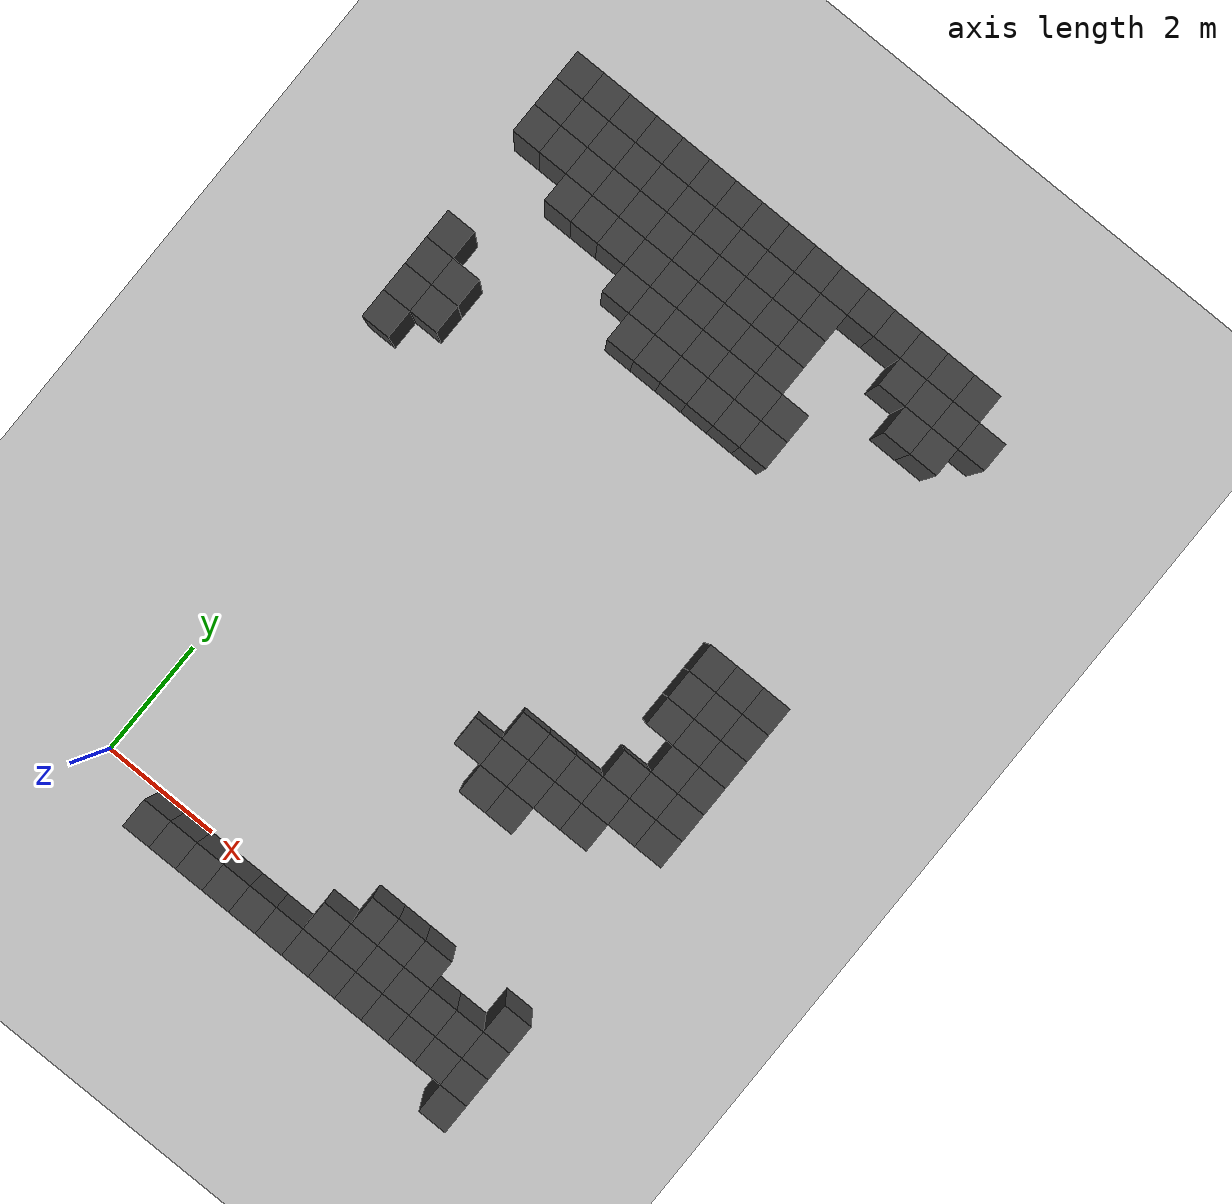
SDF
<sdf version="1.7">
 <world name="map_7972">
  <model name="ground_plane">
   <static>true</static>
   <link name="link">
    <collision name="collision">
     <geometry><plane><normal>0 0 1</normal><size>200 200</size></plane></geometry>
    </collision>
    <visual name="visual">
     <geometry><plane><normal>0 0 1</normal><size>200 200</size></plane></geometry>
     <material><ambient>0.8 0.8 0.8 1</ambient><diffuse>0.8 0.8 0.8 1</diffuse></material>
    </visual>
   </link>
  </model>
  <model name="maze_environment">
   <static>true</static>
   <link name="wall_23">
    <pose>-0.750 12.250 0.500 0 0 0</pose>
    <collision name="col"><geometry><box><size>0.5 0.5 1.0</size></box></geometry></collision>
    <visual name="vis">
     <geometry><box><size>0.5 0.5 1.0</size></box></geometry>
     <material><ambient>0.15 0.15 0.15 1</ambient><diffuse>0.25 0.25 0.25 1</diffuse></material>
    </visual>
   </link>
   <link name="wall_24">
    <pose>-0.250 12.250 0.500 0 0 0</pose>
    <collision name="col"><geometry><box><size>0.5 0.5 1.0</size></box></geometry></collision>
    <visual name="vis">
     <geometry><box><size>0.5 0.5 1.0</size></box></geometry>
     <material><ambient>0.15 0.15 0.15 1</ambient><diffuse>0.25 0.25 0.25 1</diffuse></material>
    </visual>
   </link>
   <link name="wall_25">
    <pose>0.250 12.250 0.500 0 0 0</pose>
    <collision name="col"><geometry><box><size>0.5 0.5 1.0</size></box></geometry></collision>
    <visual name="vis">
     <geometry><box><size>0.5 0.5 1.0</size></box></geometry>
     <material><ambient>0.15 0.15 0.15 1</ambient><diffuse>0.25 0.25 0.25 1</diffuse></material>
    </visual>
   </link>
   <link name="wall_26">
    <pose>0.750 12.250 0.500 0 0 0</pose>
    <collision name="col"><geometry><box><size>0.5 0.5 1.0</size></box></geometry></collision>
    <visual name="vis">
     <geometry><box><size>0.5 0.5 1.0</size></box></geometry>
     <material><ambient>0.15 0.15 0.15 1</ambient><diffuse>0.25 0.25 0.25 1</diffuse></material>
    </visual>
   </link>
   <link name="wall_27">
    <pose>1.250 12.250 0.500 0 0 0</pose>
    <collision name="col"><geometry><box><size>0.5 0.5 1.0</size></box></geometry></collision>
    <visual name="vis">
     <geometry><box><size>0.5 0.5 1.0</size></box></geometry>
     <material><ambient>0.15 0.15 0.15 1</ambient><diffuse>0.25 0.25 0.25 1</diffuse></material>
    </visual>
   </link>
   <link name="wall_28">
    <pose>1.750 12.250 0.500 0 0 0</pose>
    <collision name="col"><geometry><box><size>0.5 0.5 1.0</size></box></geometry></collision>
    <visual name="vis">
     <geometry><box><size>0.5 0.5 1.0</size></box></geometry>
     <material><ambient>0.15 0.15 0.15 1</ambient><diffuse>0.25 0.25 0.25 1</diffuse></material>
    </visual>
   </link>
   <link name="wall_29">
    <pose>2.250 12.250 0.500 0 0 0</pose>
    <collision name="col"><geometry><box><size>0.5 0.5 1.0</size></box></geometry></collision>
    <visual name="vis">
     <geometry><box><size>0.5 0.5 1.0</size></box></geometry>
     <material><ambient>0.15 0.15 0.15 1</ambient><diffuse>0.25 0.25 0.25 1</diffuse></material>
    </visual>
   </link>
   <link name="wall_30">
    <pose>2.750 12.250 0.500 0 0 0</pose>
    <collision name="col"><geometry><box><size>0.5 0.5 1.0</size></box></geometry></collision>
    <visual name="vis">
     <geometry><box><size>0.5 0.5 1.0</size></box></geometry>
     <material><ambient>0.15 0.15 0.15 1</ambient><diffuse>0.25 0.25 0.25 1</diffuse></material>
    </visual>
   </link>
   <link name="wall_31">
    <pose>3.250 12.250 0.500 0 0 0</pose>
    <collision name="col"><geometry><box><size>0.5 0.5 1.0</size></box></geometry></collision>
    <visual name="vis">
     <geometry><box><size>0.5 0.5 1.0</size></box></geometry>
     <material><ambient>0.15 0.15 0.15 1</ambient><diffuse>0.25 0.25 0.25 1</diffuse></material>
    </visual>
   </link>
   <link name="wall_32">
    <pose>3.750 12.250 0.500 0 0 0</pose>
    <collision name="col"><geometry><box><size>0.5 0.5 1.0</size></box></geometry></collision>
    <visual name="vis">
     <geometry><box><size>0.5 0.5 1.0</size></box></geometry>
     <material><ambient>0.15 0.15 0.15 1</ambient><diffuse>0.25 0.25 0.25 1</diffuse></material>
    </visual>
   </link>
   <link name="wall_33">
    <pose>4.250 12.250 0.500 0 0 0</pose>
    <collision name="col"><geometry><box><size>0.5 0.5 1.0</size></box></geometry></collision>
    <visual name="vis">
     <geometry><box><size>0.5 0.5 1.0</size></box></geometry>
     <material><ambient>0.15 0.15 0.15 1</ambient><diffuse>0.25 0.25 0.25 1</diffuse></material>
    </visual>
   </link>
   <link name="wall_34">
    <pose>4.750 12.250 0.500 0 0 0</pose>
    <collision name="col"><geometry><box><size>0.5 0.5 1.0</size></box></geometry></collision>
    <visual name="vis">
     <geometry><box><size>0.5 0.5 1.0</size></box></geometry>
     <material><ambient>0.15 0.15 0.15 1</ambient><diffuse>0.25 0.25 0.25 1</diffuse></material>
    </visual>
   </link>
   <link name="wall_35">
    <pose>5.250 12.250 0.500 0 0 0</pose>
    <collision name="col"><geometry><box><size>0.5 0.5 1.0</size></box></geometry></collision>
    <visual name="vis">
     <geometry><box><size>0.5 0.5 1.0</size></box></geometry>
     <material><ambient>0.15 0.15 0.15 1</ambient><diffuse>0.25 0.25 0.25 1</diffuse></material>
    </visual>
   </link>
   <link name="wall_36">
    <pose>5.750 12.250 0.500 0 0 0</pose>
    <collision name="col"><geometry><box><size>0.5 0.5 1.0</size></box></geometry></collision>
    <visual name="vis">
     <geometry><box><size>0.5 0.5 1.0</size></box></geometry>
     <material><ambient>0.15 0.15 0.15 1</ambient><diffuse>0.25 0.25 0.25 1</diffuse></material>
    </visual>
   </link>
   <link name="wall_37">
    <pose>6.250 12.250 0.500 0 0 0</pose>
    <collision name="col"><geometry><box><size>0.5 0.5 1.0</size></box></geometry></collision>
    <visual name="vis">
     <geometry><box><size>0.5 0.5 1.0</size></box></geometry>
     <material><ambient>0.15 0.15 0.15 1</ambient><diffuse>0.25 0.25 0.25 1</diffuse></material>
    </visual>
   </link>
   <link name="wall_38">
    <pose>6.750 12.250 0.500 0 0 0</pose>
    <collision name="col"><geometry><box><size>0.5 0.5 1.0</size></box></geometry></collision>
    <visual name="vis">
     <geometry><box><size>0.5 0.5 1.0</size></box></geometry>
     <material><ambient>0.15 0.15 0.15 1</ambient><diffuse>0.25 0.25 0.25 1</diffuse></material>
    </visual>
   </link>
   <link name="wall_64">
    <pose>-0.750 11.750 0.500 0 0 0</pose>
    <collision name="col"><geometry><box><size>0.5 0.5 1.0</size></box></geometry></collision>
    <visual name="vis">
     <geometry><box><size>0.5 0.5 1.0</size></box></geometry>
     <material><ambient>0.15 0.15 0.15 1</ambient><diffuse>0.25 0.25 0.25 1</diffuse></material>
    </visual>
   </link>
   <link name="wall_65">
    <pose>-0.250 11.750 0.500 0 0 0</pose>
    <collision name="col"><geometry><box><size>0.5 0.5 1.0</size></box></geometry></collision>
    <visual name="vis">
     <geometry><box><size>0.5 0.5 1.0</size></box></geometry>
     <material><ambient>0.15 0.15 0.15 1</ambient><diffuse>0.25 0.25 0.25 1</diffuse></material>
    </visual>
   </link>
   <link name="wall_66">
    <pose>0.250 11.750 0.500 0 0 0</pose>
    <collision name="col"><geometry><box><size>0.5 0.5 1.0</size></box></geometry></collision>
    <visual name="vis">
     <geometry><box><size>0.5 0.5 1.0</size></box></geometry>
     <material><ambient>0.15 0.15 0.15 1</ambient><diffuse>0.25 0.25 0.25 1</diffuse></material>
    </visual>
   </link>
   <link name="wall_67">
    <pose>0.750 11.750 0.500 0 0 0</pose>
    <collision name="col"><geometry><box><size>0.5 0.5 1.0</size></box></geometry></collision>
    <visual name="vis">
     <geometry><box><size>0.5 0.5 1.0</size></box></geometry>
     <material><ambient>0.15 0.15 0.15 1</ambient><diffuse>0.25 0.25 0.25 1</diffuse></material>
    </visual>
   </link>
   <link name="wall_68">
    <pose>1.250 11.750 0.500 0 0 0</pose>
    <collision name="col"><geometry><box><size>0.5 0.5 1.0</size></box></geometry></collision>
    <visual name="vis">
     <geometry><box><size>0.5 0.5 1.0</size></box></geometry>
     <material><ambient>0.15 0.15 0.15 1</ambient><diffuse>0.25 0.25 0.25 1</diffuse></material>
    </visual>
   </link>
   <link name="wall_69">
    <pose>1.750 11.750 0.500 0 0 0</pose>
    <collision name="col"><geometry><box><size>0.5 0.5 1.0</size></box></geometry></collision>
    <visual name="vis">
     <geometry><box><size>0.5 0.5 1.0</size></box></geometry>
     <material><ambient>0.15 0.15 0.15 1</ambient><diffuse>0.25 0.25 0.25 1</diffuse></material>
    </visual>
   </link>
   <link name="wall_70">
    <pose>2.250 11.750 0.500 0 0 0</pose>
    <collision name="col"><geometry><box><size>0.5 0.5 1.0</size></box></geometry></collision>
    <visual name="vis">
     <geometry><box><size>0.5 0.5 1.0</size></box></geometry>
     <material><ambient>0.15 0.15 0.15 1</ambient><diffuse>0.25 0.25 0.25 1</diffuse></material>
    </visual>
   </link>
   <link name="wall_71">
    <pose>2.750 11.750 0.500 0 0 0</pose>
    <collision name="col"><geometry><box><size>0.5 0.5 1.0</size></box></geometry></collision>
    <visual name="vis">
     <geometry><box><size>0.5 0.5 1.0</size></box></geometry>
     <material><ambient>0.15 0.15 0.15 1</ambient><diffuse>0.25 0.25 0.25 1</diffuse></material>
    </visual>
   </link>
   <link name="wall_72">
    <pose>3.250 11.750 0.500 0 0 0</pose>
    <collision name="col"><geometry><box><size>0.5 0.5 1.0</size></box></geometry></collision>
    <visual name="vis">
     <geometry><box><size>0.5 0.5 1.0</size></box></geometry>
     <material><ambient>0.15 0.15 0.15 1</ambient><diffuse>0.25 0.25 0.25 1</diffuse></material>
    </visual>
   </link>
   <link name="wall_73">
    <pose>3.750 11.750 0.500 0 0 0</pose>
    <collision name="col"><geometry><box><size>0.5 0.5 1.0</size></box></geometry></collision>
    <visual name="vis">
     <geometry><box><size>0.5 0.5 1.0</size></box></geometry>
     <material><ambient>0.15 0.15 0.15 1</ambient><diffuse>0.25 0.25 0.25 1</diffuse></material>
    </visual>
   </link>
   <link name="wall_74">
    <pose>4.250 11.750 0.500 0 0 0</pose>
    <collision name="col"><geometry><box><size>0.5 0.5 1.0</size></box></geometry></collision>
    <visual name="vis">
     <geometry><box><size>0.5 0.5 1.0</size></box></geometry>
     <material><ambient>0.15 0.15 0.15 1</ambient><diffuse>0.25 0.25 0.25 1</diffuse></material>
    </visual>
   </link>
   <link name="wall_75">
    <pose>5.750 11.750 0.500 0 0 0</pose>
    <collision name="col"><geometry><box><size>0.5 0.5 1.0</size></box></geometry></collision>
    <visual name="vis">
     <geometry><box><size>0.5 0.5 1.0</size></box></geometry>
     <material><ambient>0.15 0.15 0.15 1</ambient><diffuse>0.25 0.25 0.25 1</diffuse></material>
    </visual>
   </link>
   <link name="wall_76">
    <pose>6.250 11.750 0.500 0 0 0</pose>
    <collision name="col"><geometry><box><size>0.5 0.5 1.0</size></box></geometry></collision>
    <visual name="vis">
     <geometry><box><size>0.5 0.5 1.0</size></box></geometry>
     <material><ambient>0.15 0.15 0.15 1</ambient><diffuse>0.25 0.25 0.25 1</diffuse></material>
    </visual>
   </link>
   <link name="wall_77">
    <pose>6.750 11.750 0.500 0 0 0</pose>
    <collision name="col"><geometry><box><size>0.5 0.5 1.0</size></box></geometry></collision>
    <visual name="vis">
     <geometry><box><size>0.5 0.5 1.0</size></box></geometry>
     <material><ambient>0.15 0.15 0.15 1</ambient><diffuse>0.25 0.25 0.25 1</diffuse></material>
    </visual>
   </link>
   <link name="wall_78">
    <pose>7.250 11.750 0.500 0 0 0</pose>
    <collision name="col"><geometry><box><size>0.5 0.5 1.0</size></box></geometry></collision>
    <visual name="vis">
     <geometry><box><size>0.5 0.5 1.0</size></box></geometry>
     <material><ambient>0.15 0.15 0.15 1</ambient><diffuse>0.25 0.25 0.25 1</diffuse></material>
    </visual>
   </link>
   <link name="wall_95">
    <pose>-0.750 11.250 0.500 0 0 0</pose>
    <collision name="col"><geometry><box><size>0.5 0.5 1.0</size></box></geometry></collision>
    <visual name="vis">
     <geometry><box><size>0.5 0.5 1.0</size></box></geometry>
     <material><ambient>0.15 0.15 0.15 1</ambient><diffuse>0.25 0.25 0.25 1</diffuse></material>
    </visual>
   </link>
   <link name="wall_96">
    <pose>-0.250 11.250 0.500 0 0 0</pose>
    <collision name="col"><geometry><box><size>0.5 0.5 1.0</size></box></geometry></collision>
    <visual name="vis">
     <geometry><box><size>0.5 0.5 1.0</size></box></geometry>
     <material><ambient>0.15 0.15 0.15 1</ambient><diffuse>0.25 0.25 0.25 1</diffuse></material>
    </visual>
   </link>
   <link name="wall_97">
    <pose>0.250 11.250 0.500 0 0 0</pose>
    <collision name="col"><geometry><box><size>0.5 0.5 1.0</size></box></geometry></collision>
    <visual name="vis">
     <geometry><box><size>0.5 0.5 1.0</size></box></geometry>
     <material><ambient>0.15 0.15 0.15 1</ambient><diffuse>0.25 0.25 0.25 1</diffuse></material>
    </visual>
   </link>
   <link name="wall_98">
    <pose>0.750 11.250 0.500 0 0 0</pose>
    <collision name="col"><geometry><box><size>0.5 0.5 1.0</size></box></geometry></collision>
    <visual name="vis">
     <geometry><box><size>0.5 0.5 1.0</size></box></geometry>
     <material><ambient>0.15 0.15 0.15 1</ambient><diffuse>0.25 0.25 0.25 1</diffuse></material>
    </visual>
   </link>
   <link name="wall_99">
    <pose>1.250 11.250 0.500 0 0 0</pose>
    <collision name="col"><geometry><box><size>0.5 0.5 1.0</size></box></geometry></collision>
    <visual name="vis">
     <geometry><box><size>0.5 0.5 1.0</size></box></geometry>
     <material><ambient>0.15 0.15 0.15 1</ambient><diffuse>0.25 0.25 0.25 1</diffuse></material>
    </visual>
   </link>
   <link name="wall_100">
    <pose>1.750 11.250 0.500 0 0 0</pose>
    <collision name="col"><geometry><box><size>0.5 0.5 1.0</size></box></geometry></collision>
    <visual name="vis">
     <geometry><box><size>0.5 0.5 1.0</size></box></geometry>
     <material><ambient>0.15 0.15 0.15 1</ambient><diffuse>0.25 0.25 0.25 1</diffuse></material>
    </visual>
   </link>
   <link name="wall_101">
    <pose>2.250 11.250 0.500 0 0 0</pose>
    <collision name="col"><geometry><box><size>0.5 0.5 1.0</size></box></geometry></collision>
    <visual name="vis">
     <geometry><box><size>0.5 0.5 1.0</size></box></geometry>
     <material><ambient>0.15 0.15 0.15 1</ambient><diffuse>0.25 0.25 0.25 1</diffuse></material>
    </visual>
   </link>
   <link name="wall_102">
    <pose>2.750 11.250 0.500 0 0 0</pose>
    <collision name="col"><geometry><box><size>0.5 0.5 1.0</size></box></geometry></collision>
    <visual name="vis">
     <geometry><box><size>0.5 0.5 1.0</size></box></geometry>
     <material><ambient>0.15 0.15 0.15 1</ambient><diffuse>0.25 0.25 0.25 1</diffuse></material>
    </visual>
   </link>
   <link name="wall_103">
    <pose>3.250 11.250 0.500 0 0 0</pose>
    <collision name="col"><geometry><box><size>0.5 0.5 1.0</size></box></geometry></collision>
    <visual name="vis">
     <geometry><box><size>0.5 0.5 1.0</size></box></geometry>
     <material><ambient>0.15 0.15 0.15 1</ambient><diffuse>0.25 0.25 0.25 1</diffuse></material>
    </visual>
   </link>
   <link name="wall_104">
    <pose>3.750 11.250 0.500 0 0 0</pose>
    <collision name="col"><geometry><box><size>0.5 0.5 1.0</size></box></geometry></collision>
    <visual name="vis">
     <geometry><box><size>0.5 0.5 1.0</size></box></geometry>
     <material><ambient>0.15 0.15 0.15 1</ambient><diffuse>0.25 0.25 0.25 1</diffuse></material>
    </visual>
   </link>
   <link name="wall_105">
    <pose>4.250 11.250 0.500 0 0 0</pose>
    <collision name="col"><geometry><box><size>0.5 0.5 1.0</size></box></geometry></collision>
    <visual name="vis">
     <geometry><box><size>0.5 0.5 1.0</size></box></geometry>
     <material><ambient>0.15 0.15 0.15 1</ambient><diffuse>0.25 0.25 0.25 1</diffuse></material>
    </visual>
   </link>
   <link name="wall_106">
    <pose>6.250 11.250 0.500 0 0 0</pose>
    <collision name="col"><geometry><box><size>0.5 0.5 1.0</size></box></geometry></collision>
    <visual name="vis">
     <geometry><box><size>0.5 0.5 1.0</size></box></geometry>
     <material><ambient>0.15 0.15 0.15 1</ambient><diffuse>0.25 0.25 0.25 1</diffuse></material>
    </visual>
   </link>
   <link name="wall_107">
    <pose>6.750 11.250 0.500 0 0 0</pose>
    <collision name="col"><geometry><box><size>0.5 0.5 1.0</size></box></geometry></collision>
    <visual name="vis">
     <geometry><box><size>0.5 0.5 1.0</size></box></geometry>
     <material><ambient>0.15 0.15 0.15 1</ambient><diffuse>0.25 0.25 0.25 1</diffuse></material>
    </visual>
   </link>
   <link name="wall_118">
    <pose>0.250 10.750 0.500 0 0 0</pose>
    <collision name="col"><geometry><box><size>0.5 0.5 1.0</size></box></geometry></collision>
    <visual name="vis">
     <geometry><box><size>0.5 0.5 1.0</size></box></geometry>
     <material><ambient>0.15 0.15 0.15 1</ambient><diffuse>0.25 0.25 0.25 1</diffuse></material>
    </visual>
   </link>
   <link name="wall_119">
    <pose>0.750 10.750 0.500 0 0 0</pose>
    <collision name="col"><geometry><box><size>0.5 0.5 1.0</size></box></geometry></collision>
    <visual name="vis">
     <geometry><box><size>0.5 0.5 1.0</size></box></geometry>
     <material><ambient>0.15 0.15 0.15 1</ambient><diffuse>0.25 0.25 0.25 1</diffuse></material>
    </visual>
   </link>
   <link name="wall_120">
    <pose>1.250 10.750 0.500 0 0 0</pose>
    <collision name="col"><geometry><box><size>0.5 0.5 1.0</size></box></geometry></collision>
    <visual name="vis">
     <geometry><box><size>0.5 0.5 1.0</size></box></geometry>
     <material><ambient>0.15 0.15 0.15 1</ambient><diffuse>0.25 0.25 0.25 1</diffuse></material>
    </visual>
   </link>
   <link name="wall_121">
    <pose>1.750 10.750 0.500 0 0 0</pose>
    <collision name="col"><geometry><box><size>0.5 0.5 1.0</size></box></geometry></collision>
    <visual name="vis">
     <geometry><box><size>0.5 0.5 1.0</size></box></geometry>
     <material><ambient>0.15 0.15 0.15 1</ambient><diffuse>0.25 0.25 0.25 1</diffuse></material>
    </visual>
   </link>
   <link name="wall_122">
    <pose>2.250 10.750 0.500 0 0 0</pose>
    <collision name="col"><geometry><box><size>0.5 0.5 1.0</size></box></geometry></collision>
    <visual name="vis">
     <geometry><box><size>0.5 0.5 1.0</size></box></geometry>
     <material><ambient>0.15 0.15 0.15 1</ambient><diffuse>0.25 0.25 0.25 1</diffuse></material>
    </visual>
   </link>
   <link name="wall_123">
    <pose>2.750 10.750 0.500 0 0 0</pose>
    <collision name="col"><geometry><box><size>0.5 0.5 1.0</size></box></geometry></collision>
    <visual name="vis">
     <geometry><box><size>0.5 0.5 1.0</size></box></geometry>
     <material><ambient>0.15 0.15 0.15 1</ambient><diffuse>0.25 0.25 0.25 1</diffuse></material>
    </visual>
   </link>
   <link name="wall_124">
    <pose>3.250 10.750 0.500 0 0 0</pose>
    <collision name="col"><geometry><box><size>0.5 0.5 1.0</size></box></geometry></collision>
    <visual name="vis">
     <geometry><box><size>0.5 0.5 1.0</size></box></geometry>
     <material><ambient>0.15 0.15 0.15 1</ambient><diffuse>0.25 0.25 0.25 1</diffuse></material>
    </visual>
   </link>
   <link name="wall_125">
    <pose>3.750 10.750 0.500 0 0 0</pose>
    <collision name="col"><geometry><box><size>0.5 0.5 1.0</size></box></geometry></collision>
    <visual name="vis">
     <geometry><box><size>0.5 0.5 1.0</size></box></geometry>
     <material><ambient>0.15 0.15 0.15 1</ambient><diffuse>0.25 0.25 0.25 1</diffuse></material>
    </visual>
   </link>
   <link name="wall_126">
    <pose>4.250 10.750 0.500 0 0 0</pose>
    <collision name="col"><geometry><box><size>0.5 0.5 1.0</size></box></geometry></collision>
    <visual name="vis">
     <geometry><box><size>0.5 0.5 1.0</size></box></geometry>
     <material><ambient>0.15 0.15 0.15 1</ambient><diffuse>0.25 0.25 0.25 1</diffuse></material>
    </visual>
   </link>
   <link name="wall_135">
    <pose>1.750 10.250 0.500 0 0 0</pose>
    <collision name="col"><geometry><box><size>0.5 0.5 1.0</size></box></geometry></collision>
    <visual name="vis">
     <geometry><box><size>0.5 0.5 1.0</size></box></geometry>
     <material><ambient>0.15 0.15 0.15 1</ambient><diffuse>0.25 0.25 0.25 1</diffuse></material>
    </visual>
   </link>
   <link name="wall_136">
    <pose>2.250 10.250 0.500 0 0 0</pose>
    <collision name="col"><geometry><box><size>0.5 0.5 1.0</size></box></geometry></collision>
    <visual name="vis">
     <geometry><box><size>0.5 0.5 1.0</size></box></geometry>
     <material><ambient>0.15 0.15 0.15 1</ambient><diffuse>0.25 0.25 0.25 1</diffuse></material>
    </visual>
   </link>
   <link name="wall_137">
    <pose>2.750 10.250 0.500 0 0 0</pose>
    <collision name="col"><geometry><box><size>0.5 0.5 1.0</size></box></geometry></collision>
    <visual name="vis">
     <geometry><box><size>0.5 0.5 1.0</size></box></geometry>
     <material><ambient>0.15 0.15 0.15 1</ambient><diffuse>0.25 0.25 0.25 1</diffuse></material>
    </visual>
   </link>
   <link name="wall_138">
    <pose>3.250 10.250 0.500 0 0 0</pose>
    <collision name="col"><geometry><box><size>0.5 0.5 1.0</size></box></geometry></collision>
    <visual name="vis">
     <geometry><box><size>0.5 0.5 1.0</size></box></geometry>
     <material><ambient>0.15 0.15 0.15 1</ambient><diffuse>0.25 0.25 0.25 1</diffuse></material>
    </visual>
   </link>
   <link name="wall_139">
    <pose>3.750 10.250 0.500 0 0 0</pose>
    <collision name="col"><geometry><box><size>0.5 0.5 1.0</size></box></geometry></collision>
    <visual name="vis">
     <geometry><box><size>0.5 0.5 1.0</size></box></geometry>
     <material><ambient>0.15 0.15 0.15 1</ambient><diffuse>0.25 0.25 0.25 1</diffuse></material>
    </visual>
   </link>
   <link name="wall_140">
    <pose>4.250 10.250 0.500 0 0 0</pose>
    <collision name="col"><geometry><box><size>0.5 0.5 1.0</size></box></geometry></collision>
    <visual name="vis">
     <geometry><box><size>0.5 0.5 1.0</size></box></geometry>
     <material><ambient>0.15 0.15 0.15 1</ambient><diffuse>0.25 0.25 0.25 1</diffuse></material>
    </visual>
   </link>
   <link name="wall_141">
    <pose>4.750 10.250 0.500 0 0 0</pose>
    <collision name="col"><geometry><box><size>0.5 0.5 1.0</size></box></geometry></collision>
    <visual name="vis">
     <geometry><box><size>0.5 0.5 1.0</size></box></geometry>
     <material><ambient>0.15 0.15 0.15 1</ambient><diffuse>0.25 0.25 0.25 1</diffuse></material>
    </visual>
   </link>
   <link name="wall_145">
    <pose>2.250 9.750 0.500 0 0 0</pose>
    <collision name="col"><geometry><box><size>0.5 0.5 1.0</size></box></geometry></collision>
    <visual name="vis">
     <geometry><box><size>0.5 0.5 1.0</size></box></geometry>
     <material><ambient>0.15 0.15 0.15 1</ambient><diffuse>0.25 0.25 0.25 1</diffuse></material>
    </visual>
   </link>
   <link name="wall_146">
    <pose>2.750 9.750 0.500 0 0 0</pose>
    <collision name="col"><geometry><box><size>0.5 0.5 1.0</size></box></geometry></collision>
    <visual name="vis">
     <geometry><box><size>0.5 0.5 1.0</size></box></geometry>
     <material><ambient>0.15 0.15 0.15 1</ambient><diffuse>0.25 0.25 0.25 1</diffuse></material>
    </visual>
   </link>
   <link name="wall_147">
    <pose>3.250 9.750 0.500 0 0 0</pose>
    <collision name="col"><geometry><box><size>0.5 0.5 1.0</size></box></geometry></collision>
    <visual name="vis">
     <geometry><box><size>0.5 0.5 1.0</size></box></geometry>
     <material><ambient>0.15 0.15 0.15 1</ambient><diffuse>0.25 0.25 0.25 1</diffuse></material>
    </visual>
   </link>
   <link name="wall_148">
    <pose>3.750 9.750 0.500 0 0 0</pose>
    <collision name="col"><geometry><box><size>0.5 0.5 1.0</size></box></geometry></collision>
    <visual name="vis">
     <geometry><box><size>0.5 0.5 1.0</size></box></geometry>
     <material><ambient>0.15 0.15 0.15 1</ambient><diffuse>0.25 0.25 0.25 1</diffuse></material>
    </visual>
   </link>
   <link name="wall_149">
    <pose>4.250 9.750 0.500 0 0 0</pose>
    <collision name="col"><geometry><box><size>0.5 0.5 1.0</size></box></geometry></collision>
    <visual name="vis">
     <geometry><box><size>0.5 0.5 1.0</size></box></geometry>
     <material><ambient>0.15 0.15 0.15 1</ambient><diffuse>0.25 0.25 0.25 1</diffuse></material>
    </visual>
   </link>
   <link name="wall_150">
    <pose>4.750 9.750 0.500 0 0 0</pose>
    <collision name="col"><geometry><box><size>0.5 0.5 1.0</size></box></geometry></collision>
    <visual name="vis">
     <geometry><box><size>0.5 0.5 1.0</size></box></geometry>
     <material><ambient>0.15 0.15 0.15 1</ambient><diffuse>0.25 0.25 0.25 1</diffuse></material>
    </visual>
   </link>
   <link name="wall_158">
    <pose>-0.750 9.250 0.500 0 0 0</pose>
    <collision name="col"><geometry><box><size>0.5 0.5 1.0</size></box></geometry></collision>
    <visual name="vis">
     <geometry><box><size>0.5 0.5 1.0</size></box></geometry>
     <material><ambient>0.15 0.15 0.15 1</ambient><diffuse>0.25 0.25 0.25 1</diffuse></material>
    </visual>
   </link>
   <link name="wall_170">
    <pose>-0.750 8.750 0.500 0 0 0</pose>
    <collision name="col"><geometry><box><size>0.5 0.5 1.0</size></box></geometry></collision>
    <visual name="vis">
     <geometry><box><size>0.5 0.5 1.0</size></box></geometry>
     <material><ambient>0.15 0.15 0.15 1</ambient><diffuse>0.25 0.25 0.25 1</diffuse></material>
    </visual>
   </link>
   <link name="wall_171">
    <pose>-0.250 8.750 0.500 0 0 0</pose>
    <collision name="col"><geometry><box><size>0.5 0.5 1.0</size></box></geometry></collision>
    <visual name="vis">
     <geometry><box><size>0.5 0.5 1.0</size></box></geometry>
     <material><ambient>0.15 0.15 0.15 1</ambient><diffuse>0.25 0.25 0.25 1</diffuse></material>
    </visual>
   </link>
   <link name="wall_190">
    <pose>-0.750 8.250 0.500 0 0 0</pose>
    <collision name="col"><geometry><box><size>0.5 0.5 1.0</size></box></geometry></collision>
    <visual name="vis">
     <geometry><box><size>0.5 0.5 1.0</size></box></geometry>
     <material><ambient>0.15 0.15 0.15 1</ambient><diffuse>0.25 0.25 0.25 1</diffuse></material>
    </visual>
   </link>
   <link name="wall_191">
    <pose>-0.250 8.250 0.500 0 0 0</pose>
    <collision name="col"><geometry><box><size>0.5 0.5 1.0</size></box></geometry></collision>
    <visual name="vis">
     <geometry><box><size>0.5 0.5 1.0</size></box></geometry>
     <material><ambient>0.15 0.15 0.15 1</ambient><diffuse>0.25 0.25 0.25 1</diffuse></material>
    </visual>
   </link>
   <link name="wall_216">
    <pose>-0.750 7.750 0.500 0 0 0</pose>
    <collision name="col"><geometry><box><size>0.5 0.5 1.0</size></box></geometry></collision>
    <visual name="vis">
     <geometry><box><size>0.5 0.5 1.0</size></box></geometry>
     <material><ambient>0.15 0.15 0.15 1</ambient><diffuse>0.25 0.25 0.25 1</diffuse></material>
    </visual>
   </link>
   <link name="wall_248">
    <pose>6.250 6.750 0.500 0 0 0</pose>
    <collision name="col"><geometry><box><size>0.5 0.5 1.0</size></box></geometry></collision>
    <visual name="vis">
     <geometry><box><size>0.5 0.5 1.0</size></box></geometry>
     <material><ambient>0.15 0.15 0.15 1</ambient><diffuse>0.25 0.25 0.25 1</diffuse></material>
    </visual>
   </link>
   <link name="wall_249">
    <pose>6.750 6.750 0.500 0 0 0</pose>
    <collision name="col"><geometry><box><size>0.5 0.5 1.0</size></box></geometry></collision>
    <visual name="vis">
     <geometry><box><size>0.5 0.5 1.0</size></box></geometry>
     <material><ambient>0.15 0.15 0.15 1</ambient><diffuse>0.25 0.25 0.25 1</diffuse></material>
    </visual>
   </link>
   <link name="wall_250">
    <pose>7.250 6.750 0.500 0 0 0</pose>
    <collision name="col"><geometry><box><size>0.5 0.5 1.0</size></box></geometry></collision>
    <visual name="vis">
     <geometry><box><size>0.5 0.5 1.0</size></box></geometry>
     <material><ambient>0.15 0.15 0.15 1</ambient><diffuse>0.25 0.25 0.25 1</diffuse></material>
    </visual>
   </link>
   <link name="wall_254">
    <pose>6.250 6.250 0.500 0 0 0</pose>
    <collision name="col"><geometry><box><size>0.5 0.5 1.0</size></box></geometry></collision>
    <visual name="vis">
     <geometry><box><size>0.5 0.5 1.0</size></box></geometry>
     <material><ambient>0.15 0.15 0.15 1</ambient><diffuse>0.25 0.25 0.25 1</diffuse></material>
    </visual>
   </link>
   <link name="wall_255">
    <pose>6.750 6.250 0.500 0 0 0</pose>
    <collision name="col"><geometry><box><size>0.5 0.5 1.0</size></box></geometry></collision>
    <visual name="vis">
     <geometry><box><size>0.5 0.5 1.0</size></box></geometry>
     <material><ambient>0.15 0.15 0.15 1</ambient><diffuse>0.25 0.25 0.25 1</diffuse></material>
    </visual>
   </link>
   <link name="wall_256">
    <pose>7.250 6.250 0.500 0 0 0</pose>
    <collision name="col"><geometry><box><size>0.5 0.5 1.0</size></box></geometry></collision>
    <visual name="vis">
     <geometry><box><size>0.5 0.5 1.0</size></box></geometry>
     <material><ambient>0.15 0.15 0.15 1</ambient><diffuse>0.25 0.25 0.25 1</diffuse></material>
    </visual>
   </link>
   <link name="wall_262">
    <pose>6.250 5.750 0.500 0 0 0</pose>
    <collision name="col"><geometry><box><size>0.5 0.5 1.0</size></box></geometry></collision>
    <visual name="vis">
     <geometry><box><size>0.5 0.5 1.0</size></box></geometry>
     <material><ambient>0.15 0.15 0.15 1</ambient><diffuse>0.25 0.25 0.25 1</diffuse></material>
    </visual>
   </link>
   <link name="wall_263">
    <pose>6.750 5.750 0.500 0 0 0</pose>
    <collision name="col"><geometry><box><size>0.5 0.5 1.0</size></box></geometry></collision>
    <visual name="vis">
     <geometry><box><size>0.5 0.5 1.0</size></box></geometry>
     <material><ambient>0.15 0.15 0.15 1</ambient><diffuse>0.25 0.25 0.25 1</diffuse></material>
    </visual>
   </link>
   <link name="wall_264">
    <pose>7.250 5.750 0.500 0 0 0</pose>
    <collision name="col"><geometry><box><size>0.5 0.5 1.0</size></box></geometry></collision>
    <visual name="vis">
     <geometry><box><size>0.5 0.5 1.0</size></box></geometry>
     <material><ambient>0.15 0.15 0.15 1</ambient><diffuse>0.25 0.25 0.25 1</diffuse></material>
    </visual>
   </link>
   <link name="wall_273">
    <pose>6.750 5.250 0.500 0 0 0</pose>
    <collision name="col"><geometry><box><size>0.5 0.5 1.0</size></box></geometry></collision>
    <visual name="vis">
     <geometry><box><size>0.5 0.5 1.0</size></box></geometry>
     <material><ambient>0.15 0.15 0.15 1</ambient><diffuse>0.25 0.25 0.25 1</diffuse></material>
    </visual>
   </link>
   <link name="wall_274">
    <pose>7.250 5.250 0.500 0 0 0</pose>
    <collision name="col"><geometry><box><size>0.5 0.5 1.0</size></box></geometry></collision>
    <visual name="vis">
     <geometry><box><size>0.5 0.5 1.0</size></box></geometry>
     <material><ambient>0.15 0.15 0.15 1</ambient><diffuse>0.25 0.25 0.25 1</diffuse></material>
    </visual>
   </link>
   <link name="wall_289">
    <pose>6.250 4.750 0.500 0 0 0</pose>
    <collision name="col"><geometry><box><size>0.5 0.5 1.0</size></box></geometry></collision>
    <visual name="vis">
     <geometry><box><size>0.5 0.5 1.0</size></box></geometry>
     <material><ambient>0.15 0.15 0.15 1</ambient><diffuse>0.25 0.25 0.25 1</diffuse></material>
    </visual>
   </link>
   <link name="wall_290">
    <pose>6.750 4.750 0.500 0 0 0</pose>
    <collision name="col"><geometry><box><size>0.5 0.5 1.0</size></box></geometry></collision>
    <visual name="vis">
     <geometry><box><size>0.5 0.5 1.0</size></box></geometry>
     <material><ambient>0.15 0.15 0.15 1</ambient><diffuse>0.25 0.25 0.25 1</diffuse></material>
    </visual>
   </link>
   <link name="wall_291">
    <pose>7.250 4.750 0.500 0 0 0</pose>
    <collision name="col"><geometry><box><size>0.5 0.5 1.0</size></box></geometry></collision>
    <visual name="vis">
     <geometry><box><size>0.5 0.5 1.0</size></box></geometry>
     <material><ambient>0.15 0.15 0.15 1</ambient><diffuse>0.25 0.25 0.25 1</diffuse></material>
    </visual>
   </link>
   <link name="wall_306">
    <pose>4.750 4.250 0.500 0 0 0</pose>
    <collision name="col"><geometry><box><size>0.5 0.5 1.0</size></box></geometry></collision>
    <visual name="vis">
     <geometry><box><size>0.5 0.5 1.0</size></box></geometry>
     <material><ambient>0.15 0.15 0.15 1</ambient><diffuse>0.25 0.25 0.25 1</diffuse></material>
    </visual>
   </link>
   <link name="wall_307">
    <pose>5.250 4.250 0.500 0 0 0</pose>
    <collision name="col"><geometry><box><size>0.5 0.5 1.0</size></box></geometry></collision>
    <visual name="vis">
     <geometry><box><size>0.5 0.5 1.0</size></box></geometry>
     <material><ambient>0.15 0.15 0.15 1</ambient><diffuse>0.25 0.25 0.25 1</diffuse></material>
    </visual>
   </link>
   <link name="wall_308">
    <pose>5.750 4.250 0.500 0 0 0</pose>
    <collision name="col"><geometry><box><size>0.5 0.5 1.0</size></box></geometry></collision>
    <visual name="vis">
     <geometry><box><size>0.5 0.5 1.0</size></box></geometry>
     <material><ambient>0.15 0.15 0.15 1</ambient><diffuse>0.25 0.25 0.25 1</diffuse></material>
    </visual>
   </link>
   <link name="wall_309">
    <pose>6.250 4.250 0.500 0 0 0</pose>
    <collision name="col"><geometry><box><size>0.5 0.5 1.0</size></box></geometry></collision>
    <visual name="vis">
     <geometry><box><size>0.5 0.5 1.0</size></box></geometry>
     <material><ambient>0.15 0.15 0.15 1</ambient><diffuse>0.25 0.25 0.25 1</diffuse></material>
    </visual>
   </link>
   <link name="wall_310">
    <pose>6.750 4.250 0.500 0 0 0</pose>
    <collision name="col"><geometry><box><size>0.5 0.5 1.0</size></box></geometry></collision>
    <visual name="vis">
     <geometry><box><size>0.5 0.5 1.0</size></box></geometry>
     <material><ambient>0.15 0.15 0.15 1</ambient><diffuse>0.25 0.25 0.25 1</diffuse></material>
    </visual>
   </link>
   <link name="wall_311">
    <pose>7.250 4.250 0.500 0 0 0</pose>
    <collision name="col"><geometry><box><size>0.5 0.5 1.0</size></box></geometry></collision>
    <visual name="vis">
     <geometry><box><size>0.5 0.5 1.0</size></box></geometry>
     <material><ambient>0.15 0.15 0.15 1</ambient><diffuse>0.25 0.25 0.25 1</diffuse></material>
    </visual>
   </link>
   <link name="wall_323">
    <pose>4.250 3.750 0.500 0 0 0</pose>
    <collision name="col"><geometry><box><size>0.5 0.5 1.0</size></box></geometry></collision>
    <visual name="vis">
     <geometry><box><size>0.5 0.5 1.0</size></box></geometry>
     <material><ambient>0.15 0.15 0.15 1</ambient><diffuse>0.25 0.25 0.25 1</diffuse></material>
    </visual>
   </link>
   <link name="wall_324">
    <pose>4.750 3.750 0.500 0 0 0</pose>
    <collision name="col"><geometry><box><size>0.5 0.5 1.0</size></box></geometry></collision>
    <visual name="vis">
     <geometry><box><size>0.5 0.5 1.0</size></box></geometry>
     <material><ambient>0.15 0.15 0.15 1</ambient><diffuse>0.25 0.25 0.25 1</diffuse></material>
    </visual>
   </link>
   <link name="wall_325">
    <pose>5.250 3.750 0.500 0 0 0</pose>
    <collision name="col"><geometry><box><size>0.5 0.5 1.0</size></box></geometry></collision>
    <visual name="vis">
     <geometry><box><size>0.5 0.5 1.0</size></box></geometry>
     <material><ambient>0.15 0.15 0.15 1</ambient><diffuse>0.25 0.25 0.25 1</diffuse></material>
    </visual>
   </link>
   <link name="wall_326">
    <pose>5.750 3.750 0.500 0 0 0</pose>
    <collision name="col"><geometry><box><size>0.5 0.5 1.0</size></box></geometry></collision>
    <visual name="vis">
     <geometry><box><size>0.5 0.5 1.0</size></box></geometry>
     <material><ambient>0.15 0.15 0.15 1</ambient><diffuse>0.25 0.25 0.25 1</diffuse></material>
    </visual>
   </link>
   <link name="wall_327">
    <pose>6.250 3.750 0.500 0 0 0</pose>
    <collision name="col"><geometry><box><size>0.5 0.5 1.0</size></box></geometry></collision>
    <visual name="vis">
     <geometry><box><size>0.5 0.5 1.0</size></box></geometry>
     <material><ambient>0.15 0.15 0.15 1</ambient><diffuse>0.25 0.25 0.25 1</diffuse></material>
    </visual>
   </link>
   <link name="wall_337">
    <pose>4.750 3.250 0.500 0 0 0</pose>
    <collision name="col"><geometry><box><size>0.5 0.5 1.0</size></box></geometry></collision>
    <visual name="vis">
     <geometry><box><size>0.5 0.5 1.0</size></box></geometry>
     <material><ambient>0.15 0.15 0.15 1</ambient><diffuse>0.25 0.25 0.25 1</diffuse></material>
    </visual>
   </link>
   <link name="wall_338">
    <pose>5.250 3.250 0.500 0 0 0</pose>
    <collision name="col"><geometry><box><size>0.5 0.5 1.0</size></box></geometry></collision>
    <visual name="vis">
     <geometry><box><size>0.5 0.5 1.0</size></box></geometry>
     <material><ambient>0.15 0.15 0.15 1</ambient><diffuse>0.25 0.25 0.25 1</diffuse></material>
    </visual>
   </link>
   <link name="wall_361">
    <pose>4.750 0.750 0.500 0 0 0</pose>
    <collision name="col"><geometry><box><size>0.5 0.5 1.0</size></box></geometry></collision>
    <visual name="vis">
     <geometry><box><size>0.5 0.5 1.0</size></box></geometry>
     <material><ambient>0.15 0.15 0.15 1</ambient><diffuse>0.25 0.25 0.25 1</diffuse></material>
    </visual>
   </link>
   <link name="wall_362">
    <pose>5.250 0.750 0.500 0 0 0</pose>
    <collision name="col"><geometry><box><size>0.5 0.5 1.0</size></box></geometry></collision>
    <visual name="vis">
     <geometry><box><size>0.5 0.5 1.0</size></box></geometry>
     <material><ambient>0.15 0.15 0.15 1</ambient><diffuse>0.25 0.25 0.25 1</diffuse></material>
    </visual>
   </link>
   <link name="wall_363">
    <pose>5.750 0.750 0.500 0 0 0</pose>
    <collision name="col"><geometry><box><size>0.5 0.5 1.0</size></box></geometry></collision>
    <visual name="vis">
     <geometry><box><size>0.5 0.5 1.0</size></box></geometry>
     <material><ambient>0.15 0.15 0.15 1</ambient><diffuse>0.25 0.25 0.25 1</diffuse></material>
    </visual>
   </link>
   <link name="wall_364">
    <pose>7.250 0.750 0.500 0 0 0</pose>
    <collision name="col"><geometry><box><size>0.5 0.5 1.0</size></box></geometry></collision>
    <visual name="vis">
     <geometry><box><size>0.5 0.5 1.0</size></box></geometry>
     <material><ambient>0.15 0.15 0.15 1</ambient><diffuse>0.25 0.25 0.25 1</diffuse></material>
    </visual>
   </link>
   <link name="wall_377">
    <pose>4.250 0.250 0.500 0 0 0</pose>
    <collision name="col"><geometry><box><size>0.5 0.5 1.0</size></box></geometry></collision>
    <visual name="vis">
     <geometry><box><size>0.5 0.5 1.0</size></box></geometry>
     <material><ambient>0.15 0.15 0.15 1</ambient><diffuse>0.25 0.25 0.25 1</diffuse></material>
    </visual>
   </link>
   <link name="wall_378">
    <pose>4.750 0.250 0.500 0 0 0</pose>
    <collision name="col"><geometry><box><size>0.5 0.5 1.0</size></box></geometry></collision>
    <visual name="vis">
     <geometry><box><size>0.5 0.5 1.0</size></box></geometry>
     <material><ambient>0.15 0.15 0.15 1</ambient><diffuse>0.25 0.25 0.25 1</diffuse></material>
    </visual>
   </link>
   <link name="wall_379">
    <pose>5.250 0.250 0.500 0 0 0</pose>
    <collision name="col"><geometry><box><size>0.5 0.5 1.0</size></box></geometry></collision>
    <visual name="vis">
     <geometry><box><size>0.5 0.5 1.0</size></box></geometry>
     <material><ambient>0.15 0.15 0.15 1</ambient><diffuse>0.25 0.25 0.25 1</diffuse></material>
    </visual>
   </link>
   <link name="wall_380">
    <pose>5.750 0.250 0.500 0 0 0</pose>
    <collision name="col"><geometry><box><size>0.5 0.5 1.0</size></box></geometry></collision>
    <visual name="vis">
     <geometry><box><size>0.5 0.5 1.0</size></box></geometry>
     <material><ambient>0.15 0.15 0.15 1</ambient><diffuse>0.25 0.25 0.25 1</diffuse></material>
    </visual>
   </link>
   <link name="wall_381">
    <pose>6.250 0.250 0.500 0 0 0</pose>
    <collision name="col"><geometry><box><size>0.5 0.5 1.0</size></box></geometry></collision>
    <visual name="vis">
     <geometry><box><size>0.5 0.5 1.0</size></box></geometry>
     <material><ambient>0.15 0.15 0.15 1</ambient><diffuse>0.25 0.25 0.25 1</diffuse></material>
    </visual>
   </link>
   <link name="wall_382">
    <pose>6.750 0.250 0.500 0 0 0</pose>
    <collision name="col"><geometry><box><size>0.5 0.5 1.0</size></box></geometry></collision>
    <visual name="vis">
     <geometry><box><size>0.5 0.5 1.0</size></box></geometry>
     <material><ambient>0.15 0.15 0.15 1</ambient><diffuse>0.25 0.25 0.25 1</diffuse></material>
    </visual>
   </link>
   <link name="wall_383">
    <pose>7.250 0.250 0.500 0 0 0</pose>
    <collision name="col"><geometry><box><size>0.5 0.5 1.0</size></box></geometry></collision>
    <visual name="vis">
     <geometry><box><size>0.5 0.5 1.0</size></box></geometry>
     <material><ambient>0.15 0.15 0.15 1</ambient><diffuse>0.25 0.25 0.25 1</diffuse></material>
    </visual>
   </link>
   <link name="wall_401">
    <pose>1.250 -0.250 0.500 0 0 0</pose>
    <collision name="col"><geometry><box><size>0.5 0.5 1.0</size></box></geometry></collision>
    <visual name="vis">
     <geometry><box><size>0.5 0.5 1.0</size></box></geometry>
     <material><ambient>0.15 0.15 0.15 1</ambient><diffuse>0.25 0.25 0.25 1</diffuse></material>
    </visual>
   </link>
   <link name="wall_402">
    <pose>1.750 -0.250 0.500 0 0 0</pose>
    <collision name="col"><geometry><box><size>0.5 0.5 1.0</size></box></geometry></collision>
    <visual name="vis">
     <geometry><box><size>0.5 0.5 1.0</size></box></geometry>
     <material><ambient>0.15 0.15 0.15 1</ambient><diffuse>0.25 0.25 0.25 1</diffuse></material>
    </visual>
   </link>
   <link name="wall_403">
    <pose>2.250 -0.250 0.500 0 0 0</pose>
    <collision name="col"><geometry><box><size>0.5 0.5 1.0</size></box></geometry></collision>
    <visual name="vis">
     <geometry><box><size>0.5 0.5 1.0</size></box></geometry>
     <material><ambient>0.15 0.15 0.15 1</ambient><diffuse>0.25 0.25 0.25 1</diffuse></material>
    </visual>
   </link>
   <link name="wall_404">
    <pose>2.750 -0.250 0.500 0 0 0</pose>
    <collision name="col"><geometry><box><size>0.5 0.5 1.0</size></box></geometry></collision>
    <visual name="vis">
     <geometry><box><size>0.5 0.5 1.0</size></box></geometry>
     <material><ambient>0.15 0.15 0.15 1</ambient><diffuse>0.25 0.25 0.25 1</diffuse></material>
    </visual>
   </link>
   <link name="wall_405">
    <pose>3.250 -0.250 0.500 0 0 0</pose>
    <collision name="col"><geometry><box><size>0.5 0.5 1.0</size></box></geometry></collision>
    <visual name="vis">
     <geometry><box><size>0.5 0.5 1.0</size></box></geometry>
     <material><ambient>0.15 0.15 0.15 1</ambient><diffuse>0.25 0.25 0.25 1</diffuse></material>
    </visual>
   </link>
   <link name="wall_406">
    <pose>3.750 -0.250 0.500 0 0 0</pose>
    <collision name="col"><geometry><box><size>0.5 0.5 1.0</size></box></geometry></collision>
    <visual name="vis">
     <geometry><box><size>0.5 0.5 1.0</size></box></geometry>
     <material><ambient>0.15 0.15 0.15 1</ambient><diffuse>0.25 0.25 0.25 1</diffuse></material>
    </visual>
   </link>
   <link name="wall_407">
    <pose>4.250 -0.250 0.500 0 0 0</pose>
    <collision name="col"><geometry><box><size>0.5 0.5 1.0</size></box></geometry></collision>
    <visual name="vis">
     <geometry><box><size>0.5 0.5 1.0</size></box></geometry>
     <material><ambient>0.15 0.15 0.15 1</ambient><diffuse>0.25 0.25 0.25 1</diffuse></material>
    </visual>
   </link>
   <link name="wall_408">
    <pose>4.750 -0.250 0.500 0 0 0</pose>
    <collision name="col"><geometry><box><size>0.5 0.5 1.0</size></box></geometry></collision>
    <visual name="vis">
     <geometry><box><size>0.5 0.5 1.0</size></box></geometry>
     <material><ambient>0.15 0.15 0.15 1</ambient><diffuse>0.25 0.25 0.25 1</diffuse></material>
    </visual>
   </link>
   <link name="wall_409">
    <pose>5.250 -0.250 0.500 0 0 0</pose>
    <collision name="col"><geometry><box><size>0.5 0.5 1.0</size></box></geometry></collision>
    <visual name="vis">
     <geometry><box><size>0.5 0.5 1.0</size></box></geometry>
     <material><ambient>0.15 0.15 0.15 1</ambient><diffuse>0.25 0.25 0.25 1</diffuse></material>
    </visual>
   </link>
   <link name="wall_410">
    <pose>5.750 -0.250 0.500 0 0 0</pose>
    <collision name="col"><geometry><box><size>0.5 0.5 1.0</size></box></geometry></collision>
    <visual name="vis">
     <geometry><box><size>0.5 0.5 1.0</size></box></geometry>
     <material><ambient>0.15 0.15 0.15 1</ambient><diffuse>0.25 0.25 0.25 1</diffuse></material>
    </visual>
   </link>
   <link name="wall_411">
    <pose>6.250 -0.250 0.500 0 0 0</pose>
    <collision name="col"><geometry><box><size>0.5 0.5 1.0</size></box></geometry></collision>
    <visual name="vis">
     <geometry><box><size>0.5 0.5 1.0</size></box></geometry>
     <material><ambient>0.15 0.15 0.15 1</ambient><diffuse>0.25 0.25 0.25 1</diffuse></material>
    </visual>
   </link>
   <link name="wall_412">
    <pose>6.750 -0.250 0.500 0 0 0</pose>
    <collision name="col"><geometry><box><size>0.5 0.5 1.0</size></box></geometry></collision>
    <visual name="vis">
     <geometry><box><size>0.5 0.5 1.0</size></box></geometry>
     <material><ambient>0.15 0.15 0.15 1</ambient><diffuse>0.25 0.25 0.25 1</diffuse></material>
    </visual>
   </link>
   <link name="wall_413">
    <pose>7.250 -0.250 0.500 0 0 0</pose>
    <collision name="col"><geometry><box><size>0.5 0.5 1.0</size></box></geometry></collision>
    <visual name="vis">
     <geometry><box><size>0.5 0.5 1.0</size></box></geometry>
     <material><ambient>0.15 0.15 0.15 1</ambient><diffuse>0.25 0.25 0.25 1</diffuse></material>
    </visual>
   </link>
   <link name="wall_444">
    <pose>7.250 -0.750 0.500 0 0 0</pose>
    <collision name="col"><geometry><box><size>0.5 0.5 1.0</size></box></geometry></collision>
    <visual name="vis">
     <geometry><box><size>0.5 0.5 1.0</size></box></geometry>
     <material><ambient>0.15 0.15 0.15 1</ambient><diffuse>0.25 0.25 0.25 1</diffuse></material>
    </visual>
   </link>
  </model>
 </world>
</sdf>
